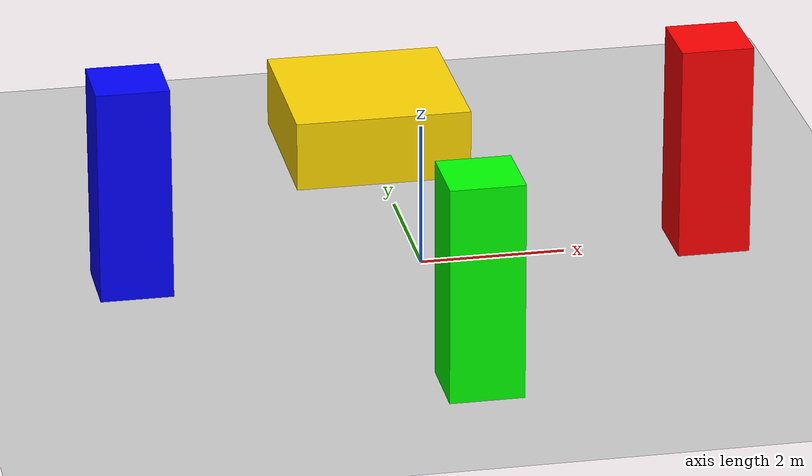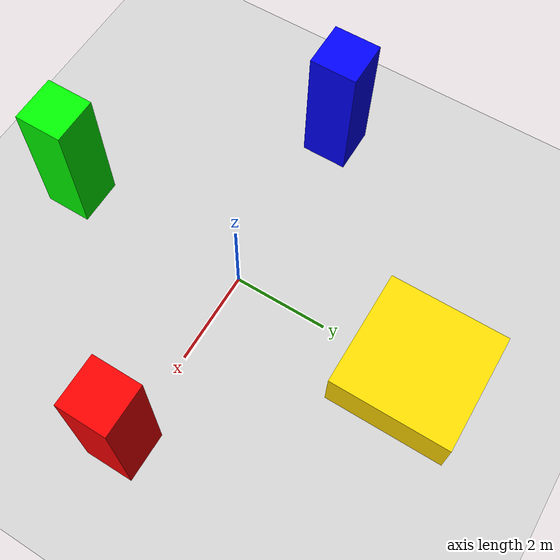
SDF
<?xml version="1.0" encoding="UTF-8"?>
<sdf version="1.9">
  <world name="default">
    <physics type="ode">
      <max_step_size>0.004</max_step_size>
      <real_time_factor>1.0</real_time_factor>
      <real_time_update_rate>250</real_time_update_rate>
    </physics>
    <gravity>0 0 -9.8</gravity>
    <magnetic_field>6e-06 2.3e-05 -4.2e-05</magnetic_field>
    <atmosphere type="adiabatic"/>
    <scene>
      <grid>false</grid>
      <ambient>0.4 0.4 0.4 1</ambient>
      <background>0.7 0.7 0.7 1</background>
      <shadows>true</shadows>
    </scene>
    <model name="ground_plane">
      <static>true</static>
      <link name="link">
        <collision name="collision">
          <geometry>
            <plane>
              <normal>0 0 1</normal>
              <size>1 1</size>
            </plane>
          </geometry>
          <surface>
            <friction>
              <ode/>
            </friction>
            <bounce/>
            <contact/>
          </surface>
        </collision>
        <visual name="visual">
          <geometry>
            <plane>
              <normal>0 0 1</normal>
              <size>500 500</size>
            </plane>
          </geometry>
          <material>
            <ambient>0.8 0.8 0.8 1</ambient>
            <diffuse>0.8 0.8 0.8 1</diffuse>
            <specular>0.8 0.8 0.8 1</specular>
          </material>
        </visual>
        <pose>0 0 0 0 -0 0</pose>
        <inertial>
          <pose>0 0 0 0 -0 0</pose>
          <mass>1</mass>
          <inertia>
            <ixx>1</ixx>
            <ixy>0</ixy>
            <ixz>0</ixz>
            <iyy>1</iyy>
            <iyz>0</iyz>
            <izz>1</izz>
          </inertia>
        </inertial>
        <enable_wind>false</enable_wind>
      </link>
      <pose>0 0 0 0 -0 0</pose>
      <self_collide>false</self_collide>
    </model>
    <light name="sunUTC" type="directional">
      <pose>0 0 500 0 -0 0</pose>
      <cast_shadows>true</cast_shadows>
      <intensity>1</intensity>
      <direction>0.001 0.625 -0.78</direction>
      <diffuse>0.904 0.904 0.904 1</diffuse>
      <specular>0.271 0.271 0.271 1</specular>
      <attenuation>
        <range>2000</range>
        <linear>0</linear>
        <constant>1</constant>
        <quadratic>0</quadratic>
      </attenuation>
      <spot>
        <inner_angle>0</inner_angle>
        <outer_angle>0</outer_angle>
        <falloff>0</falloff>
      </spot>
    </light>
    <spherical_coordinates>
      <surface_model>EARTH_WGS84</surface_model>
      <world_frame_orientation>ENU</world_frame_orientation>
      <latitude_deg>47.397971057728974</latitude_deg>
      <longitude_deg>8.546163739800146</longitude_deg>
      <elevation>0</elevation>
    </spherical_coordinates>

    <!-- CUSTOM OBSTACLES & LANDING PAD -->

    <!-- Red Pillar (North: X = 4) -->
    <model name="red_pillar">
      <pose>4 0 1.5 0 0 0</pose>
      <static>true</static>
      <link name="link">
        <collision name="collision"><geometry><box><size>1 1 3</size></box></geometry></collision>
        <visual name="visual"><geometry><box><size>1 1 3</size></box></geometry><material><ambient>1 0 0 1</ambient><diffuse>1 0 0 1</diffuse></material></visual>
      </link>
    </model>

    <!-- Blue Pillar (South: X = -4) -->
    <model name="blue_pillar">
      <pose>-4 0 1.5 0 0 0</pose>
      <static>true</static>
      <link name="link">
        <collision name="collision"><geometry><box><size>1 1 3</size></box></geometry></collision>
        <visual name="visual"><geometry><box><size>1 1 3</size></box></geometry><material><ambient>0 0 1 1</ambient><diffuse>0 0 1 1</diffuse></material></visual>
      </link>
    </model>

    <!-- Green Pillar (West: Y = -4) -->
    <model name="green_pillar">
      <pose>0 -4 1.5 0 0 0</pose>
      <static>true</static>
      <link name="link">
        <collision name="collision"><geometry><box><size>1 1 3</size></box></geometry></collision>
        <visual name="visual"><geometry><box><size>1 1 3</size></box></geometry><material><ambient>0 1 0 1</ambient><diffuse>0 1 0 1</diffuse></material></visual>
      </link>
    </model>

    <!-- Golden Landing Pad (East: Y = 4, Height = 1.0m, Top surface Z = 1.0) -->
    <model name="golden_pad">
      <pose>0 4 0.5 0 0 0</pose>
      <static>true</static>
      <link name="link">
        <collision name="collision"><geometry><box><size>2.5 2.5 1.0</size></box></geometry></collision>
        <visual name="visual">
          <geometry><box><size>2.5 2.5 1.0</size></box></geometry>
          <material><ambient>1 0.84 0 1</ambient><diffuse>1 0.84 0 1</diffuse></material>
        </visual>
      </link>
    </model>

  </world>
</sdf>
